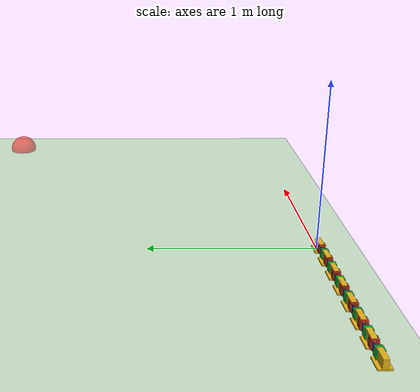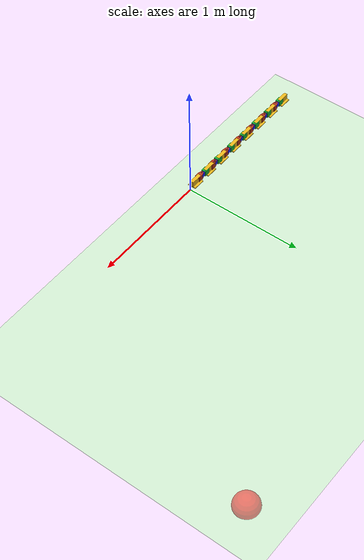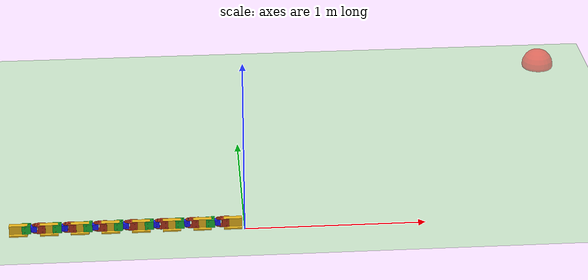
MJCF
<mujoco model="Snake">
  <compiler angle="degree" coordinate="local" inertiafromgeom="true" meshdir="tr_stl_files"/>
  <option collision="predefined" integrator="RK4" timestep="0.002" />
  <default>
    <geom conaffinity="1" condim="1" contype="1" material="geom"/>
    <joint armature='0.1'/>
    <pair condim="3" friction="0.5 0.5" solimp="0.9 0.95 0.001 0.9 6" solref= "0.02 1"/>
  </default>
  <asset>
    <texture builtin="gradient" height="100" rgb1="1 1 1" rgb2="0 0 0" type="skybox" width="100"/>
    <texture builtin="flat" height="1278" mark="cross" markrgb="1 1 1" name="texgeom" random="0.01" rgb1="0.8 0.6 0.4" rgb2="0.8 0.6 0.4" type="cube" width="127"/>
    <texture builtin="checker" height="100" name="texplane" rgb1="0 0 0" rgb2="0.8 0.8 0.8" type="2d" width="100"/>
    <material name="MatPlane" reflectance="0.5" shininess="1" specular="1" texrepeat="30 30" texture="texplane"/>
    <material name="geom" texture="texgeom" texuniform="true"/>
    <mesh file="servo_arm_connector_v1.stl" scale=".001 .001 .001" name="arm_connector_mesh"/>
    <mesh file="servo_back_connector_v1.stl" scale=".001 .001 .001" name="back_connector_mesh" />
    <mesh file="motor.stl" scale=".001 .001 .001" name="motor_mesh" />
  </asset>
  <contact>
     <pair name="g1" geom1="caps1" geom2="floor" />
     <pair name="g2" geom1="caps2" geom2="floor" />
     <pair name="g3" geom1="caps3" geom2="floor" />
     <pair name="g4" geom1="caps4" geom2="floor" />
     <pair name="g5" geom1="caps5" geom2="floor" />
     <pair name="g6" geom1="caps6" geom2="floor" />
     <pair name="g7" geom1="caps7" geom2="floor" />
     <pair name="g8" geom1="caps8" geom2="floor" />
  </contact>
  <worldbody>
    <light cutoff="100" diffuse="1 1 1" dir="-0 0 -1.3" directional="true" exponent="1" pos="0 0 0.13" specular=".1 .1 .1"/>
    <geom conaffinity="1" condim="3" material="MatPlane" name="floor" pos="0 0 -0.01" rgba="0.8 0.9 0.8 1" size="10 10 0.1" type="plane"/>

    <!--  ================= SNAKE ================= /-->

    <!-- head/seg1 -->
    <body name="seg1" pos="0 0 .040">
      <camera name="track" mode="trackcom" pos="-.5 -2.5 2.5" xyaxes="1 0 0 0 1 1"/>
      <geom name="seg1_body_layer0" type="box" size="0.05 0.0350 0.004" density="56.268" pos="-0.0665 0 -0.0157" rgba="0.9 0.7 .1 1"/>
      <geom name="seg1_body_layer1" type="box" size="0.05 0.0145 0.024" density="56.268" pos="-0.0665 0 0.012" rgba="0.9 0.7 .1 1"/>
      <geom mesh="arm_connector_mesh" type="mesh" mass="0.027" euler="180 0 -90" pos="-0.133 0 0.0005" rgba="0.7 0.2 .1 1"/>
      <geom name="caps1" type="capsule" size="0.004" fromto="-0.022 0 -0.018  -0.111 0 -0.018" mass="0.0000001" rgba="0 0 0 1"/>
      <joint axis="1 0 0" name="slider1" pos="-0.015 0 0" type="slide"/>
      <joint axis="0 1 0" name="slider2" pos="-0.015 0 0" type="slide"/>
      <joint axis="0 0 1" name="slider3" pos="-0.015 0 0" type="slide"/>
      <joint axis="0 0 1" name="free_body_rot" pos="-0.015 0 0" type="hinge"/>

      <!-- Segment 2 -->
      <body name="seg2" pos="-0.167 0 0">
        <geom name="seg2_body_layer0" type="box" size="0.05 0.0350 0.004" density="56.268" pos="-0.0665 0 -0.0157" rgba="0.9 0.7 .1 1"/>
        <geom name="seg2_body_layer1" type="box" size="0.05 0.0145 0.024" density="56.268" pos="-0.0665 0 0.012" rgba="0.9 0.7 .1 1"/>
        <geom mesh="back_connector_mesh" type="mesh" mass="0.027" euler="180 0 -90" pos="0.035 0 0.0005" rgba="0.1 0.7 .2 1"/>
        <geom mesh="arm_connector_mesh" type="mesh" mass="0.027" euler="180 0 -90" pos="-0.133 0 0.0005" rgba="0.7 0.2 .1 1"/>
        <geom mesh="motor_mesh" type="mesh" mass="0.0572" euler="0 0 -90" pos="0.023 0 0.011" rgba=".1 .1 1 1"/>
        <geom name="caps2" type="capsule" size="0.004" fromto="-0.022 0 -0.018  -0.111 0 -0.018" mass="0.0000001" rgba="0 0 0 1"/>
        <joint axis="0 0 1" limited="true" name="motor1_rot" pos="0.0225 0 0" range="-80 80" type="hinge"/>

        <!-- Segment 3 -->
        <body name="seg3" pos="-0.167 0 0">
          <geom name="seg3_body_layer0" type="box" size="0.05 0.0350 0.004" density="56.268" pos="-0.0665 0 -0.0157" rgba="0.9 0.7 .1 1"/>
          <geom name="seg3_body_layer1" type="box" size="0.05 0.0145 0.024" density="56.268" pos="-0.0665 0 0.012" rgba="0.9 0.7 .1 1"/>
          <geom mesh="back_connector_mesh" type="mesh" mass="0.027" euler="180 0 -90" pos="0.035 0 0.0005" rgba="0.1 0.7 .2 1"/>
          <geom mesh="arm_connector_mesh" type="mesh" mass="0.027" euler="180 0 -90" pos="-0.133 0 0.0005" rgba="0.7 0.2 .1 1"/>
          <geom mesh="motor_mesh" type="mesh" mass="0.0572" euler="0 0 -90" pos="0.023 0 0.011" rgba=".1 .1 1 1"/>
          <geom name="caps3" type="capsule" size="0.004" fromto="-0.022 0 -0.018  -0.111 0 -0.018" mass="0.0000001" rgba="0 0 0 1"/>
          <joint axis="0 0 1" limited="true" name="motor2_rot" pos="0.0225 0 0" range="-80 80" type="hinge"/>

          <!-- Segment 4 -->
          <body name="seg4" pos="-0.167 0 0">
            <geom name="seg4_body_layer0" type="box" size="0.05 0.0350 0.004" density="56.268" pos="-0.0665 0 -0.0157" rgba="0.9 0.7 .1 1"/>
            <geom name="seg4_body_layer1" type="box" size="0.05 0.0145 0.024" density="56.268" pos="-0.0665 0 0.012" rgba="0.9 0.7 .1 1"/>
            <geom mesh="back_connector_mesh" type="mesh" mass="0.027" euler="180 0 -90" pos="0.035 0 0.0005" rgba="0.1 0.7 .2 1"/>
            <geom mesh="arm_connector_mesh" type="mesh" mass="0.027" euler="180 0 -90" pos="-0.133 0 0.0005" rgba="0.7 0.2 .1 1"/>
            <geom mesh="motor_mesh" type="mesh" mass="0.0572" euler="0 0 -90" pos="0.023 0 0.011" rgba=".1 .1 1 1"/>
            <geom name="caps4" type="capsule" size="0.004" fromto="-0.022 0 -0.018  -0.111 0 -0.018" mass="0.0000001" rgba="0 0 0 1"/>
            <joint axis="0 0 1" limited="true" name="motor3_rot" pos="0.0225 0 0" range="-80 80" type="hinge"/>

            <!-- Segment 5 -->
            <body name="seg5" pos="-0.167 0 0">
              <geom name="seg5_body_layer0" type="box" size="0.05 0.0350 0.004" density="56.268" pos="-0.0665 0 -0.0157" rgba="0.9 0.7 .1 1"/>
              <geom name="seg5_body_layer1" type="box" size="0.05 0.0145 0.024" density="56.268" pos="-0.0665 0 0.012" rgba="0.9 0.7 .1 1"/>
              <geom mesh="back_connector_mesh" type="mesh" mass="0.027" euler="180 0 -90" pos="0.035 0 0.0005" rgba="0.1 0.7 .2 1"/>
              <geom mesh="arm_connector_mesh" type="mesh" mass="0.027" euler="180 0 -90" pos="-0.133 0 0.0005" rgba="0.7 0.2 .1 1"/>
              <geom mesh="motor_mesh" type="mesh" mass="0.0572" euler="0 0 -90" pos="0.023 0 0.011" rgba=".1 .1 1 1"/>
              <geom name="caps5" type="capsule" size="0.004" fromto="-0.022 0 -0.018  -0.111 0 -0.018" mass="0.0000001" rgba="0 0 0 1"/>
              <joint axis="0 0 1" limited="true" name="motor4_rot" pos="0.0225 0 0" range="-80 80" type="hinge"/>

              <!-- Segment 6 -->
              <body name="seg6" pos="-0.167 0 0">
                <geom name="seg6_body_layer0" type="box" size="0.05 0.0350 0.004" density="56.268" pos="-0.0665 0 -0.0157" rgba="0.9 0.7 .1 1"/>
                <geom name="seg6_body_layer1" type="box" size="0.05 0.0145 0.024" density="56.268" pos="-0.0665 0 0.012" rgba="0.9 0.7 .1 1"/>
                <geom mesh="back_connector_mesh" type="mesh" mass="0.027" euler="180 0 -90" pos="0.035 0 0.0005" rgba="0.1 0.7 .2 1"/>
                <geom mesh="arm_connector_mesh" type="mesh" mass="0.027" euler="180 0 -90" pos="-0.133 0 0.0005" rgba="0.7 0.2 .1 1"/>
                <geom mesh="motor_mesh" type="mesh" mass="0.0572" euler="0 0 -90" pos="0.023 0 0.011" rgba=".1 .1 1 1"/>
                <geom name="caps6" type="capsule" size="0.004" fromto="-0.022 0 -0.018  -0.111 0 -0.018" mass="0.0000001" rgba="0 0 0 1"/>
                <joint axis="0 0 1" limited="true" name="motor5_rot" pos="0.0225 0 0" range="-80 80" type="hinge"/>

                <!-- Segment 7 -->
                <body name="seg7" pos="-0.167 0 0">
                  <geom name="seg7_body_layer0" type="box" size="0.05 0.0350 0.004" density="56.268" pos="-0.0665 0 -0.0157" rgba="0.9 0.7 .1 1"/>
                  <geom name="seg7_body_layer1" type="box" size="0.05 0.0145 0.024" density="56.268" pos="-0.0665 0 0.012" rgba="0.9 0.7 .1 1"/>
                  <geom mesh="back_connector_mesh" type="mesh" mass="0.027" euler="180 0 -90" pos="0.035 0 0.0005" rgba="0.1 0.7 .2 1"/>
                  <geom mesh="arm_connector_mesh" type="mesh" mass="0.027" euler="180 0 -90" pos="-0.133 0 0.0005" rgba="0.7 0.2 .1 1"/>
                  <geom mesh="motor_mesh" type="mesh" mass="0.0572" euler="0 0 -90" pos="0.023 0 0.011" rgba=".1 .1 1 1"/>
                  <geom name="caps7" type="capsule" size="0.004" fromto="-0.022 0 -0.018  -0.111 0 -0.018" mass="0.0000001" rgba="0 0 0 1"/>
                  <joint axis="0 0 1" limited="true" name="motor6_rot" pos="0.0225 0 0" range="-80 80" type="hinge"/>

                  <!-- Segment 8 -->
                  <body name="seg8" pos="-0.167 0 0">
                    <geom name="seg8_body_layer0" type="box" size="0.05 0.0350 0.004" density="56.268" pos="-0.0665 0 -0.0157" rgba="0.9 0.7 .1 1"/>
                    <geom name="seg8_body_layer1" type="box" size="0.05 0.0145 0.024" density="56.268" pos="-0.0665 0 0.012" rgba="0.9 0.7 .1 1"/>
                    <geom mesh="back_connector_mesh" type="mesh" mass="0.027" euler="180 0 -90" pos="0.035 0 0.0005" rgba="0.1 0.7 .2 1"/>
                    <geom mesh="motor_mesh" type="mesh" mass="0.0572" euler="0 0 -90" pos="0.023 0 0.011" rgba=".1 .1 1 1"/>
                    <geom name="caps8" type="capsule" size="0.004" fromto="-0.022 0 -0.018  -0.111 0 -0.018" mass="0.0000001" rgba="0 0 0 1"/>
                    <joint axis="0 0 1" limited="true" name="motor7_rot" pos="0.0225 0 0" range="-80 80" type="hinge"/>
                  </body>
                </body>
              </body>
            </body>
          </body>
        </body>
      </body>
    </body>
    <body name="goal_sphere_body1" pos="2 2 0">
      <geom name="goal_sphere1" type="sphere" size="0.1" mass="1e10" conaffinity="0" contype="0" rgba="1 0 0 .5"/>
    </body>
  </worldbody>

  <actuator>
    <!-- ACTUATION -->
    <motor ctrllimited="true" ctrlrange="-1 1"  gear="1"  joint="motor1_rot"/>
    <motor ctrllimited="true" ctrlrange="-1 1"  gear="1"  joint="motor2_rot"/>
    <motor ctrllimited="true" ctrlrange="-1 1"  gear="1"  joint="motor3_rot"/>
    <motor ctrllimited="true" ctrlrange="-1 1"  gear="1"  joint="motor4_rot"/>
    <motor ctrllimited="true" ctrlrange="-1 1"  gear="1"  joint="motor5_rot"/>
    <motor ctrllimited="true" ctrlrange="-1 1"  gear="1"  joint="motor6_rot"/>
    <motor ctrllimited="true" ctrlrange="-1 1"  gear="1"  joint="motor7_rot"/>
  </actuator>

</mujoco>
